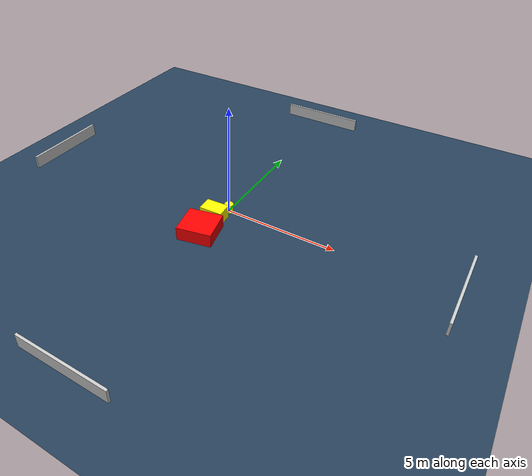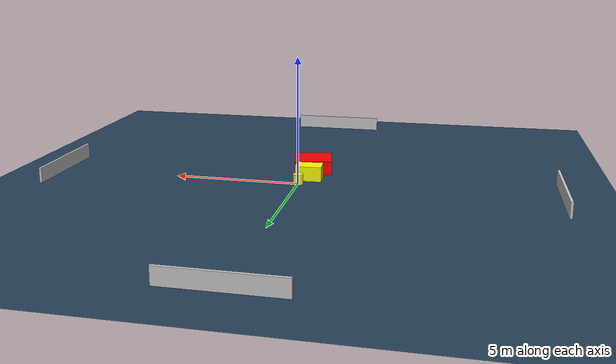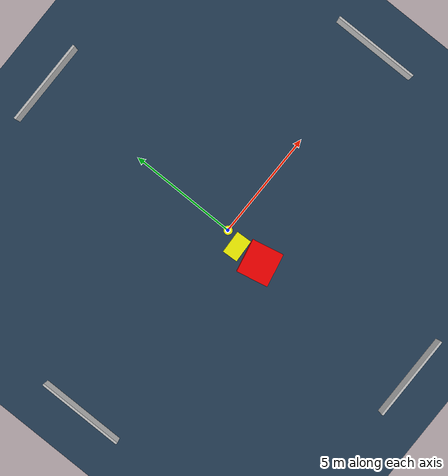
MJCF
<?xml version="1.0" ?>
<mujoco model="generated_environment">
  <option timestep="0.01" integrator="RK4" cone="elliptic"/>
  <default>
    <geom density="1"/>
  </default>
  <asset>
    <texture builtin="gradient" height="3072" name="skybox" rgb1="0.3 0.5 0.7" rgb2="0 0 0" type="skybox" width="512"/>
    <texture builtin="checker" height="300" name="groundplane" rgb1="0.2 0.3 0.4" rgb2="0.1 0.2 0.3" type="2d" width="300"/>
    <material name="groundplane" reflectance="0.2" texrepeat="5 5" texture="groundplane"/>
  </asset>
  <worldbody>
    <light dir="0 0 -1" directional="true" pos="0 0 1.5"/>
    <geom condim="3" friction="0.5 0.005 0.001" material="groundplane" name="floor" pos="0 0 0" size="0 0 0.05" type="plane"/>
    <body name="walls">
      <geom name="wall_1" condim="4" pos="-10.0 0.0 0.3" rgba="0.800000011920929 0.800000011920929 0.800000011920929 1.0" size="0.05 2.0 0.3" type="box"/>
      <geom name="wall_2" condim="4" pos="10.0 0.0 0.3" rgba="0.800000011920929 0.800000011920929 0.800000011920929 1.0" size="0.05 2.0 0.3" type="box"/>
      <geom name="wall_3" condim="4" pos="0.0 -10.0 0.3" rgba="0.800000011920929 0.800000011920929 0.800000011920929 1.0" size="2.0 0.05 0.3" type="box"/>
      <geom name="wall_4" condim="4" pos="0.0 10.0 0.3" rgba="0.800000011920929 0.800000011920929 0.800000011920929 1.0" size="2.0 0.05 0.3" type="box"/>
    </body>
    <body name="robot">
      <joint name="joint_x" type="slide" pos="0 0 0" axis="1 0 0"/>
      <joint name="joint_y" type="slide" pos="0 0 0" axis="0 1 0"/>
      <geom name="robot" type="cylinder" pos="0.0 0.0 0.2" size="0.2 0.2 0.0" mass="5.0" friction="1.0 0.005 0.0001" condim="4" rgba="1.0 1.0 0.0 1.0"/>
    </body>
    <body name="obstacle_1_movable">
      <geom name="obstacle_1_movable" condim="4" pos="-0.30133407917713195 -0.7311382588699097 0.3" euler="0 0 182.643951120211" friction="0.0 0.005 0.001" rgba="1.0 1.0 0.0 1.0" size="0.5225831829353421 0.3539672054787376 0.3" type="box" mass="0.1"/>
      <joint type="free"/>
    </body>
    <body name="obstacle_2_static">
      <geom name="obstacle_2_static" condim="4" pos="-0.22930567325405585 -1.9298115675716552 0.3" euler="0 0 191.88061158096812" friction="0.0 0.005 0.001" rgba="1.0 0.0 0.0 1.0" size="0.7651922837862954 0.724248902291105 0.3" type="box"/>
    </body>
  </worldbody>
  <actuator>
    <motor name="actuator_x" joint="joint_x" gear="1" ctrlrange="-1 1"/>
    <motor name="actuator_y" joint="joint_y" gear="1" ctrlrange="-1 1"/>
  </actuator>
</mujoco>
